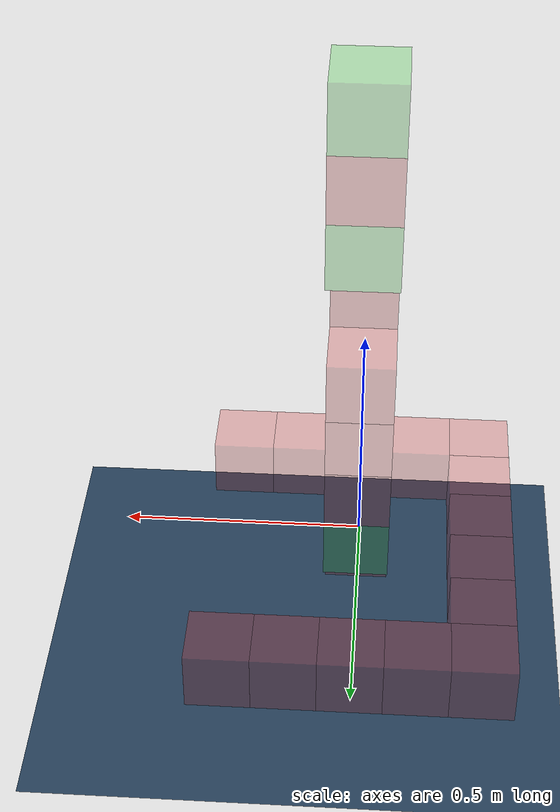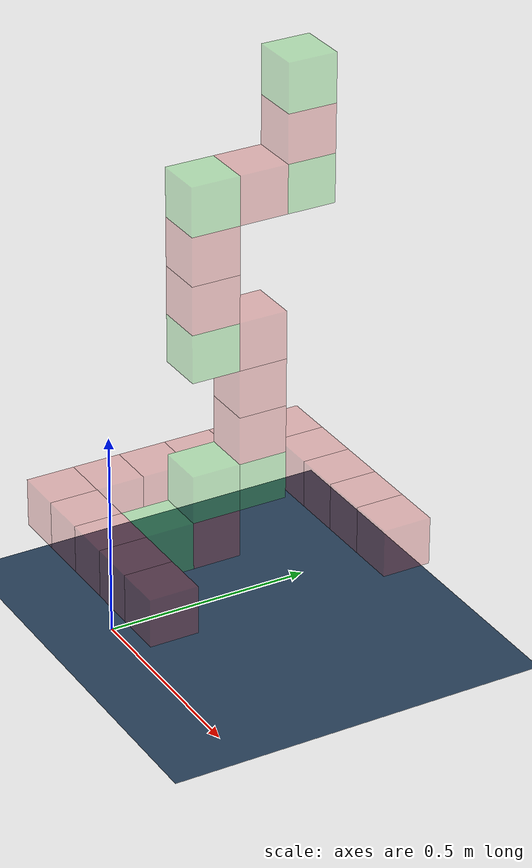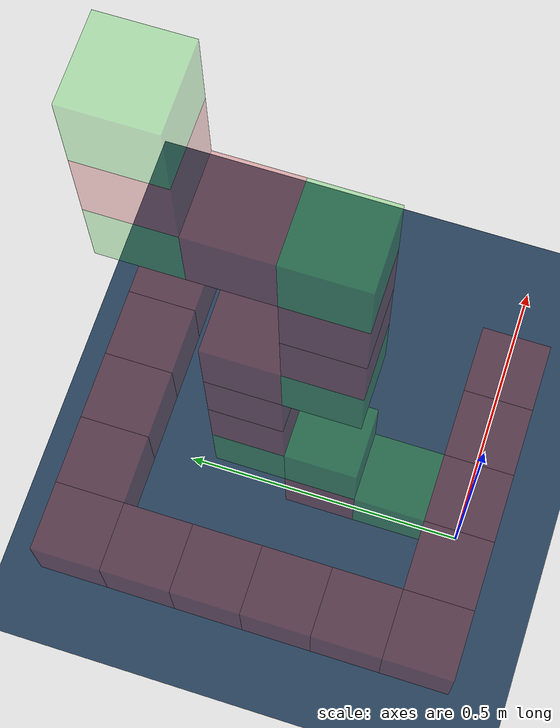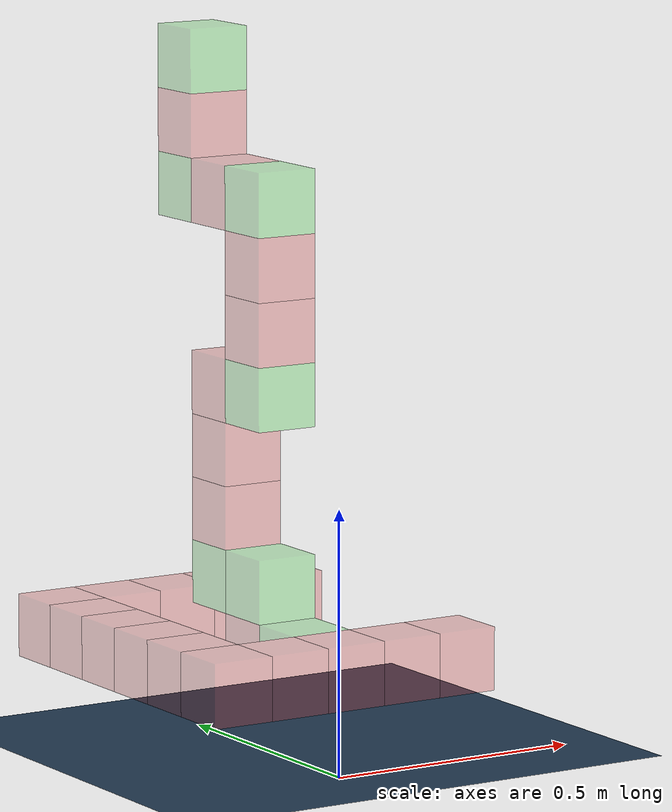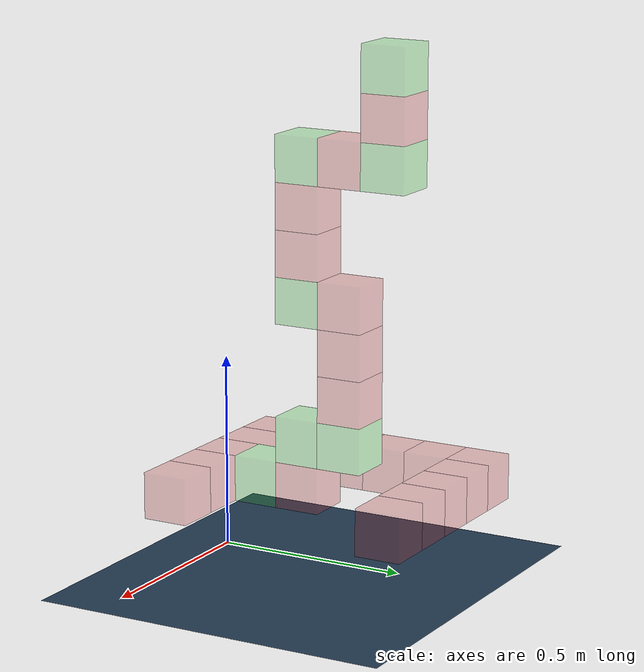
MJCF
<?xml version="1.0" encoding="utf-8"?>
<mujoco model="modular_robot">
    <compiler angle="radian" meshdir="assets" texturedir="assets" autolimits="true"/>
    <option timestep="0.002"/>
    <option gravity="0 0 -9.81"/>
    <statistic center="0 0 0.1" extent="0.6"/>
    <visual>
        <headlight diffuse="0.6 0.6 0.6" ambient="0.3 0.3 0.3" specular="0 0 0"/>
        <rgba haze="0.15 0.25 0.35 1"/>
        <global azimuth="140" elevation="-30"/>
    </visual>
    <asset>
        <texture type="skybox" builtin="gradient" rgb1="0.3 0.5 0.7" rgb2="0 0 0" width="512" height="3072"/>
        <texture type="2d" name="groundplane" builtin="checker" mark="edge" rgb1="0.2 0.3 0.4" rgb2="0.1 0.2 0.3" markrgb="0.8 0.8 0.8" width="300" height="300"/>
        <material name="groundplane" texture="groundplane" texuniform="true" texrepeat="5 5" reflectance="0.2"/>
    </asset>
    <default>
        <default class="base_collision">
            <geom type="box" size="0.06 0.06 0.06" pos="0 0 0" mass="0.5" contype="0" conaffinity="0" rgba="0.8 0.2 0.2 0.3"/>
        </default>
        <default class="joint_collision">
            <geom type="box" size="0.06 0.06 0.06" pos="0 0 0" mass="0.5" contype="0" conaffinity="0" rgba="0.2 0.8 0.2 0.3"/>
        </default>
        <default class="end_collision">
            <geom type="box" size="0.06 0.06 0.06" pos="0 0 0" mass="0.5" contype="0" conaffinity="1" rgba="0.8 0.2 0.2 0" friction="0.6" />
        </default>
        <default class="foot_site">
            <site type="sphere" size="0.0175" pos="0 0 0" rgba="0.3 0.6 0.8 0.5" />
        </default>
        <default class="joint+y">
            <joint type="hinge" axis="0 1 0" pos="0 0 0" damping="0.1" armature="0.01"/>
        </default>
        <default class="joint-y">
            <joint type="hinge" axis="0 1 0" pos="0 0 0" damping="0.1" armature="0.01"/>
        </default>
        <default class="joint+x">
            <joint type="hinge" axis="1 0 0" pos="0 0 0" damping="0.1" armature="0.01"/>
        </default>
        <default class="joint-x">
            <joint type="hinge" axis="1 0 0" pos="0 0 0" damping="0.1" armature="0.01"/>
        </default>
        <default class="joint+z">
            <joint type="hinge" axis="0 0 1" pos="0 0 0" damping="0.1" armature="0.01"/>
        </default>
        <default class="joint-z">
            <joint type="hinge" axis="0 0 1" pos="0 0 0" damping="0.1" armature="0.01"/>
        </default>
        <default class="joint_motor">
            <motor ctrlrange="-100 100"/>
        </default>

    </default>

    <worldbody>
        <light pos="0 0 1.5" dir="0 0 -1" directional="true"/>
        <geom name="floor" size="0 0 0.05" type="plane" material="groundplane"/>
        <body name="module0" pos="0 0 0.2">
            <freejoint/>
            <body name="modulewall1" pos="0 0 0">
                <geom class="base_collision"/>
                <body name="modulex1" pos="0 0.12 0">
                    <geom class="joint_collision"/>
                    <joint name="joint0" class="joint+y"/>
                    <body name="module1" pos="0 0.12 0">
                        <geom class="base_collision"/>
                        <body name="module2" pos="0 0 0.12">
                            <geom class="joint_collision"/>
                            <joint name="joint1" class="joint+z"/>
                            <body name="module3" pos="0 0.12 0">
                                <geom class="joint_collision"/>
                                <joint name="joint2" class="joint+y"/>
                                <body name="module4" pos="0 0 0.12">
                                    <geom class="base_collision"/>
                                    <body name="module5" pos="0 0 0.12">
                                        <geom class="base_collision"/>
                                        <body name="module6" pos="0 0 0.12">
                                            <geom class="base_collision"/>
                                            <body name="module7" pos="0 -0.12 0">
                                                <geom class="joint_collision"/>
                                                <joint name="joint3" class="joint-y"/>
                                                <body name="module8" pos="0 0 0.12">
                                                    <geom class="base_collision"/>
                                                    <body name="module9" pos="0 0 0.12">
                                                        <geom class="base_collision"/>
                                                        <body name="module10" pos="0 0 0.12">

                                                            <geom class="joint_collision"/>
                                                            <joint name="joint4" class="joint+z"/>
                                                            <body name="module11" pos="0 0.12 0">
                                                                <geom class="base_collision"/>
                                                                <body name="module12" pos="0 0.12 0">
                                                                    <geom class="joint_collision"/>
                                                                    <joint name="joint5" class="joint+y"/>
                                                                    <body name="module13" pos="0 0 0.12">
                                                                        <geom class="base_collision"/>
                                                                        <body name="module14" pos="0 0 0.12">
                                                                            <geom class="joint_collision"/>
                                                                            <joint name="joint6" class="joint+z"/>

                                                                        </body>
                                                                    </body>
                                                                </body>

                                                            </body>
                                                        </body>
                                                    </body>
                                                </body>
                                            </body>
                                        </body>
                                    </body>
                                </body>
                            </body>
                        </body>

                    </body>
                </body>
                <body name="modulewall2" pos="0.12 0 0">
                    <geom class="base_collision"/>
                    <body name="modulewall21" pos="0.12 0 0">
                        <geom class="base_collision"/>
                    </body>
                </body>
                <body name="modulewall3" pos="-0.12 0 0">
                    <geom class="base_collision"/>
                    <body name="modulewall4" pos="-0.12 0 0">
                        <geom class="base_collision"/>
                        <body name="modulewall5" pos="0 0.12 0">
                            <geom class="base_collision"/>
                            <body name="modulewall6" pos="0 0.12 0">
                                <geom class="base_collision"/>
                                <body name="modulewall7" pos="0 0.12 0">
                                    <geom class="base_collision"/>
                                    <body name="modulewall8" pos="0 0.12 0">
                                        <geom class="base_collision"/>
                                        <body name="modulewall9" pos="0 0.12 0">
                                            <geom class="base_collision"/>
                                            <body name="modulewall10" pos="0.12 0 0">
                                                <geom class="base_collision"/>
                                                <body name="modulewall11" pos="0.12 0 0">
                                                    <geom class="base_collision"/>
                                                    <body name="modulewall12" pos="0.12 0 0">
                                                        <geom class="base_collision"/>
                                                        <body name="modulewall13" pos="0.12 0 0">
                                                            <geom class="base_collision"/>
                                                        </body>
                                                    </body>
                                                </body>
                                            </body>
                                        </body>
                                    </body>
                                </body>
                            </body>
                        </body>
                    </body>
                </body>
            </body>

        </body>
    </worldbody>
    <actuator>
    </actuator>

    <keyframe>
    </keyframe>
</mujoco>
